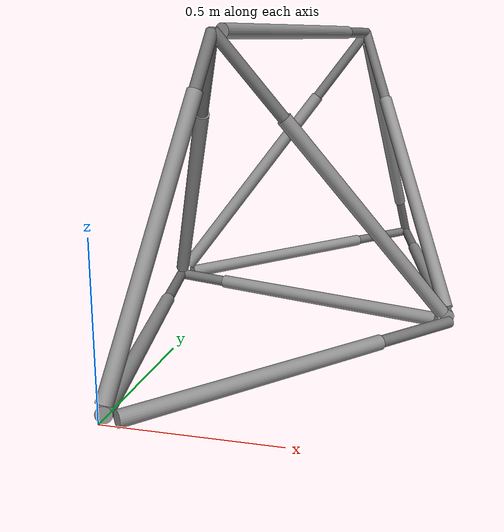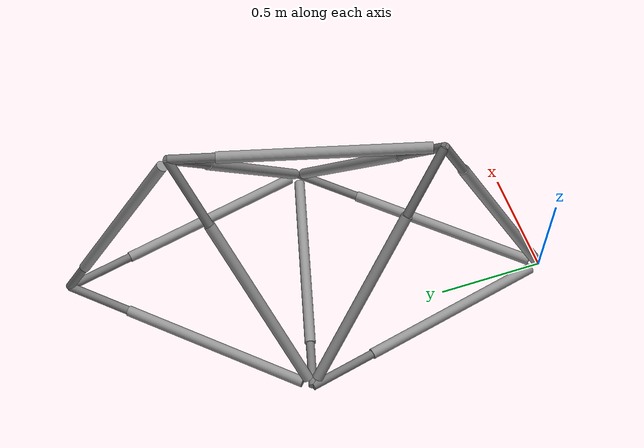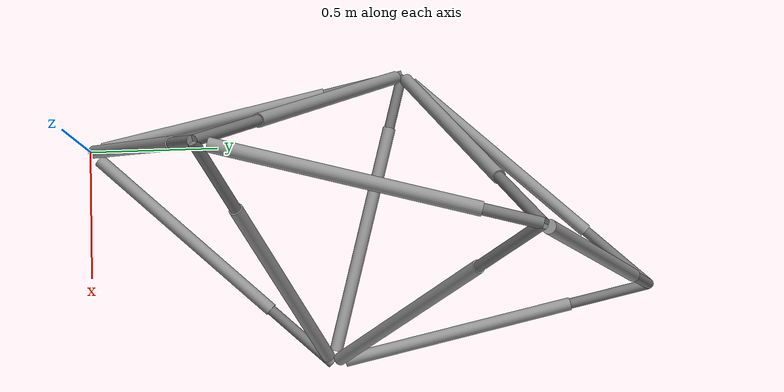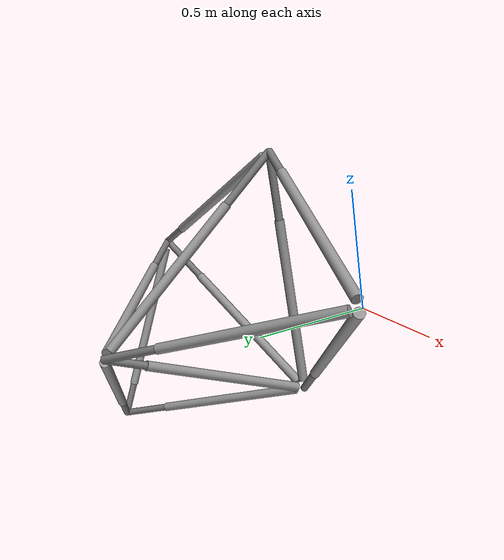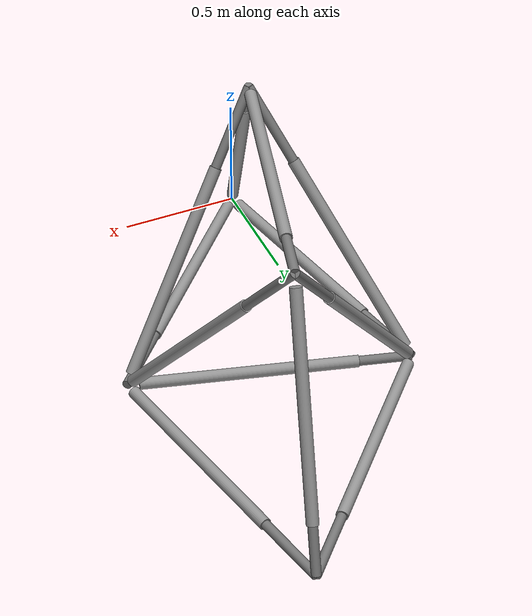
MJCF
<mujoco model="3-tet">
  <compiler angle="radian" meshdir="assets" autolimits="true"/>
  <option gravity="0 0 -9.81" timestep="0.002" integrator="implicit"/>

  <option cone="elliptic" impratio="10"/>

  <asset>
    <material name="metal" rgba="0.58 0.58 0.58 1"/>
    <material name="gray" rgba="0.4627 0.4627 0.4627 1"/>
    <material name="red" rgba="0.9 0.1 0.1 1"/>
    <texture name="grid" type="2d" builtin="checker" width="512" height="512" rgb1=".1 .2 .3" rgb2=".2 .3 .4"/>
    <material name="grid" texture="grid" texrepeat="1 1" texuniform="true" reflectance=".2"/>
  </asset>

  <worldbody>
  <body name="ground" pos="0 0 0">
  <freejoint/>

    <body name="[0-1-0]" pos="0.000000 0.000000 0.000000" >

    <geom type="cylinder" pos="0.338899 0.367624 0.000000" axisangle="-0.735248 0.677798 0.000000 1.570796" size="0.025 0.45" material="metal" contype="1"/>
    <body name="[0-1-1]" pos="0.338899 0.367624 0.000000" >
        <geom type="cylinder" pos="0.181983 0.197407 0.000000" axisangle="-0.735248 0.677798 0.000000 1.570796" size="0.02 0.5" material="gray" contype="1"/>
        <joint name="Linear-0-1" type="slide" axis="0.677798 0.735248 0.000000" range="-0.268491 0.681509"/>

    <body name="[1-2-0]" pos="0.520882 0.565031 0.000000" >
    <joint name="Passive1-2" type="ball" pos="0.000000 0.000000 0.000000" axis="0 1 0" damping=".9"/>
    <geom type="cylinder" pos="-0.482470 0.131235 -0.000000" axisangle="-0.262469 -0.964940 0.000000 1.570796" size="0.025 0.45" material="metal" contype="1"/>
    <body name="[1-2-1]" pos="-0.482470 0.131235 0.000000" >
        <geom type="cylinder" pos="-0.163720 0.044533 -0.000000" axisangle="-0.262469 -0.964940 0.000000 1.570796" size="0.02 0.5" material="gray" contype="1"/>
        <joint name="Linear-1-2" type="slide" axis="-0.964940 0.262469 0.000000" range="-0.169668 0.780332"/>

    <body name="[2-3-0]" pos="-0.646190 0.175767 0.000000" >
    <joint name="Passive2-3" type="ball" pos="0.000000 0.000000 0.000000" axis="0 1 0" damping=".9"/>
    <geom type="cylinder" pos="0.159468 -0.272782 0.387505" axisangle="0.545565 0.318935 -0.000000 0.684067" size="0.025 0.45" material="metal" contype="1"/>
    <body name="[2-3-1]" pos="0.159468 -0.272782 0.387505" >
        <geom type="cylinder" pos="0.094706 -0.162002 0.230135" axisangle="0.545565 0.318935 -0.000000 0.684067" size="0.02 0.5" material="gray" contype="1"/>
        <joint name="Linear-2-3" type="slide" axis="0.318935 -0.545565 0.775009" range="-0.296944 0.653056"/>

    <body name="[3-4-0]" pos="0.254174 -0.434785 0.617639" >
    <joint name="Passive3-4" type="ball" pos="0.000000 0.000000 0.000000" axis="0 1 0" damping=".9"/>
    <geom type="cylinder" pos="0.131218 0.482475 -0.000005" axisangle="-0.964949 0.262436 0.000000 1.570807" size="0.025 0.45" material="metal" contype="1"/>
    <body name="[3-4-1]" pos="0.131218 0.482475 -0.000005" >
        <geom type="cylinder" pos="0.038910 0.143066 -0.000002" axisangle="-0.964949 0.262436 0.000000 1.570807" size="0.02 0.5" material="gray" contype="1"/>
        <joint name="Linear-3-4" type="slide" axis="0.262436 0.964949 -0.000010" range="-0.148263 0.801737"/>

    <body name="[4-5-0]" pos="0.170128 0.625541 -0.000007" >
    <joint name="Passive4-5" type="ball" pos="0.000000 0.000000 0.000000" axis="0 1 0" damping=".9"/>
    <geom type="cylinder" pos="0.063153 0.232129 -0.438324" axisangle="-0.464258 0.126307 0.000000 2.639646" size="0.025 0.45" material="metal" contype="1"/>
    <body name="[4-5-1]" pos="0.063153 0.232129 -0.438324" >
        <geom type="cylinder" pos="0.018512 0.068043 -0.128484" axisangle="-0.464258 0.126307 0.000000 2.639646" size="0.02 0.5" material="gray" contype="1"/>
        <joint name="Linear-4-5" type="slide" axis="0.126307 0.464258 -0.876648" range="-0.146563 0.803437"/>

    </body>
    </body>

    </body>
    </body>

    </body>
    </body>

    <body name="[2-4-0]" pos="-0.646190 0.175767 0.000000" >
    <joint name="Passive2-4" type="ball" pos="0.000000 0.000000 0.000000" axis="0 1 0" damping=".9"/>
    <geom type="cylinder" pos="0.275660 0.154391 0.387524" axisangle="-0.308782 0.551320 0.000000 0.684005" size="0.025 0.45" material="metal" contype="1"/>
    <body name="[2-4-1]" pos="0.275660 0.154391 0.387524" >
        <geom type="cylinder" pos="0.163667 0.091666 0.230084" axisangle="-0.308782 0.551320 0.000000 0.684005" size="0.02 0.5" material="gray" contype="1"/>
        <joint name="Linear-2-4" type="slide" axis="0.551320 0.308782 0.775048" range="-0.296864 0.653136"/>

    </body>
    </body>

    <body name="[2-5-0]" pos="-0.646190 0.175767 0.000000" >
    <joint name="Passive2-5" type="ball" pos="0.000000 0.000000 0.000000" axis="0 1 0" damping=".9"/>
    <geom type="cylinder" pos="0.338886 0.367636 -0.000000" axisangle="-0.735272 0.677772 0.000000 1.570796" size="0.025 0.45" material="metal" contype="1"/>
    <body name="[2-5-1]" pos="0.338886 0.367636 -0.000000" >
        <geom type="cylinder" pos="0.182034 0.197477 -0.000000" axisangle="-0.735272 0.677772 0.000000 1.570796" size="0.02 0.5" material="gray" contype="1"/>
        <joint name="Linear-2-5" type="slide" axis="0.677772 0.735272 -0.000000" range="-0.268577 0.681423"/>

    </body>
    </body>

    </body>
    </body>

    <body name="[1-3-0]" pos="0.520882 0.565031 0.000000" >
    <joint name="Passive1-3" type="ball" pos="0.000000 0.000000 0.000000" axis="0 1 0" damping=".9"/>
    <geom type="cylinder" pos="-0.275659 -0.154429 0.387510" axisangle="0.308857 -0.551318 0.000000 0.684050" size="0.025 0.45" material="metal" contype="1"/>
    <body name="[1-3-1]" pos="-0.275659 -0.154429 0.387510" >
        <geom type="cylinder" pos="-0.163701 -0.091708 0.230124" axisangle="0.308857 -0.551318 0.000000 0.684050" size="0.02 0.5" material="gray" contype="1"/>
        <joint name="Linear-1-3" type="slide" axis="-0.551318 -0.308857 0.775020" range="-0.296927 0.653073"/>

    </body>
    </body>

    <body name="[1-4-0]" pos="0.520882 0.565031 0.000000" >
    <joint name="Passive1-4" type="ball" pos="0.000000 0.000000 0.000000" axis="0 1 0" damping=".9"/>
    <geom type="cylinder" pos="-0.159488 0.272751 0.387519" axisangle="-0.545501 -0.318975 0.000000 0.684022" size="0.025 0.45" material="metal" contype="1"/>
    <body name="[1-4-1]" pos="-0.159488 0.272751 0.387519" >
        <geom type="cylinder" pos="-0.094698 0.161949 0.230094" axisangle="-0.545501 -0.318975 0.000000 0.684022" size="0.02 0.5" material="gray" contype="1"/>
        <joint name="Linear-1-4" type="slide" axis="-0.318975 0.545501 0.775038" range="-0.296882 0.653118"/>

    </body>
    </body>

    <body name="[1-5-0]" pos="0.520882 0.565031 0.000000" >
    <joint name="Passive1-5" type="ball" pos="0.000000 0.000000 0.000000" axis="0 1 0" damping=".9"/>
    <geom type="cylinder" pos="-0.105968 0.488642 -0.000000" axisangle="-0.977284 -0.211935 0.000000 1.570796" size="0.025 0.45" material="metal" contype="1"/>
    <body name="[1-5-1]" pos="-0.105968 0.488642 -0.000000" >
        <geom type="cylinder" pos="-0.056919 0.262468 -0.000000" axisangle="-0.977284 -0.211935 0.000000 1.570796" size="0.02 0.5" material="gray" contype="1"/>
        <joint name="Linear-1-5" type="slide" axis="-0.211935 0.977284 -0.000000" range="-0.268568 0.681432"/>

    </body>
    </body>

    </body>
    </body>

    <body name="[0-2-0]" pos="0.000000 0.000000 0.000000" >
    <joint name="Passive0-2" type="ball" pos="0.000000 0.000000 0.000000" axis="0 1 0" damping=".9"/>
    <geom type="cylinder" pos="-0.105985 0.488638 0.000000" axisangle="-0.977276 -0.211969 0.000000 1.570796" size="0.025 0.45" material="metal" contype="1"/>
    <body name="[0-2-1]" pos="-0.105985 0.488638 0.000000" >
        <geom type="cylinder" pos="-0.056910 0.262381 0.000000" axisangle="-0.977276 -0.211969 0.000000 1.570796" size="0.02 0.5" material="gray" contype="1"/>
        <joint name="Linear-0-2" type="slide" axis="-0.211969 0.977276 0.000000" range="-0.268482 0.681518"/>

    </body>
    </body>

    <body name="[0-3-0]" pos="0.000000 0.000000 0.000000" >
    <joint name="Passive0-3" type="ball" pos="0.000000 0.000000 0.000000" axis="0 1 0" damping=".9"/>
    <geom type="cylinder" pos="0.063134 0.232056 0.438365" axisangle="-0.464112 0.126268 0.000000 0.501774" size="0.025 0.45" material="metal" contype="1"/>
    <body name="[0-3-1]" pos="0.063134 0.232056 0.438365" >
        <geom type="cylinder" pos="0.018494 0.067978 0.128413" axisangle="-0.464112 0.126268 0.000000 0.501774" size="0.02 0.5" material="gray" contype="1"/>
        <joint name="Linear-0-3" type="slide" axis="0.126268 0.464112 0.876731" range="-0.146468 0.803532"/>

    </body>
    </body>
    </body> </worldbody> <equality>
<connect name="kinematic_link_0-0" active="true" body1="[0-2-1]" body2="[1-2-1]" anchor=" -0.162895 0.751019 0.000000" />
<connect name="kinematic_link_1-0" active="true" body1="[0-3-1]" body2="[1-3-1]" anchor=" 0.081628 0.300034 0.566779" />
<connect name="kinematic_link_1-1" active="true" body1="[0-3-1]" body2="[2-3-1]" anchor=" 0.081628 0.300034 0.566779" />
<connect name="kinematic_link_2-0" active="true" body1="[1-3-1]" body2="[0-3-1]" anchor=" -0.439360 -0.246137 0.617634" />
<connect name="kinematic_link_2-1" active="true" body1="[1-3-1]" body2="[2-3-1]" anchor=" -0.439360 -0.246137 0.617634" />
<connect name="kinematic_link_3-0" active="true" body1="[1-4-1]" body2="[2-4-1]" anchor=" -0.254185 0.434700 0.617613" />
<connect name="kinematic_link_3-1" active="true" body1="[1-4-1]" body2="[3-4-1]" anchor=" -0.254185 0.434700 0.617613" />
<connect name="kinematic_link_4-0" active="true" body1="[1-5-1]" body2="[2-5-1]" anchor=" -0.162887 0.751109 -0.000000" />
<connect name="kinematic_link_4-1" active="true" body1="[1-5-1]" body2="[4-5-1]" anchor=" -0.162887 0.751109 -0.000000" />
<connect name="kinematic_link_5-0" active="true" body1="[2-4-1]" body2="[1-4-1]" anchor=" 0.439327 0.246057 0.617608" />
<connect name="kinematic_link_6-0" active="true" body1="[2-5-1]" body2="[1-5-1]" anchor=" 0.520920 0.565113 -0.000000" />
<connect name="kinematic_link_6-1" active="true" body1="[2-5-1]" body2="[4-5-1]" anchor=" 0.520920 0.565113 -0.000000" />
<connect name="kinematic_link_7-0" active="true" body1="[4-5-1]" body2="[1-5-1]" anchor=" 0.081665 0.300172 -0.566808" />
<connect name="kinematic_link_7-1" active="true" body1="[4-5-1]" body2="[2-5-1]" anchor=" 0.081665 0.300172 -0.566808" /></equality><actuator>

<intvelocity name="Member-1-2" joint="Linear-1-2" kp="18000"  kv="10000" inheritrange="1" />
<intvelocity name="Member-1-3" joint="Linear-1-3" kp="18000"  kv="10000" inheritrange="1" />
<intvelocity name="Member-1-4" joint="Linear-1-4" kp="18000"  kv="10000" inheritrange="1" />
<intvelocity name="Member-1-5" joint="Linear-1-5" kp="18000"  kv="10000" inheritrange="1" />
<intvelocity name="Member-0-1" joint="Linear-0-1" kp="18000"  kv="10000" inheritrange="1" />
<intvelocity name="Member-0-2" joint="Linear-0-2" kp="18000"  kv="10000" inheritrange="1" />
<intvelocity name="Member-0-3" joint="Linear-0-3" kp="18000"  kv="10000" inheritrange="1" />
<intvelocity name="Member-2-3" joint="Linear-2-3" kp="18000"  kv="10000" inheritrange="1" />
<intvelocity name="Member-2-4" joint="Linear-2-4" kp="18000"  kv="10000" inheritrange="1" />
<intvelocity name="Member-2-5" joint="Linear-2-5" kp="18000"  kv="10000" inheritrange="1" />
<intvelocity name="Member-3-4" joint="Linear-3-4" kp="18000"  kv="10000" inheritrange="1" />
<intvelocity name="Member-4-5" joint="Linear-4-5" kp="18000"  kv="10000" inheritrange="1" /></actuator>
</mujoco>
